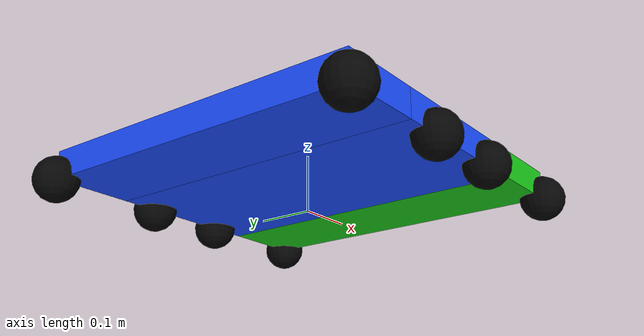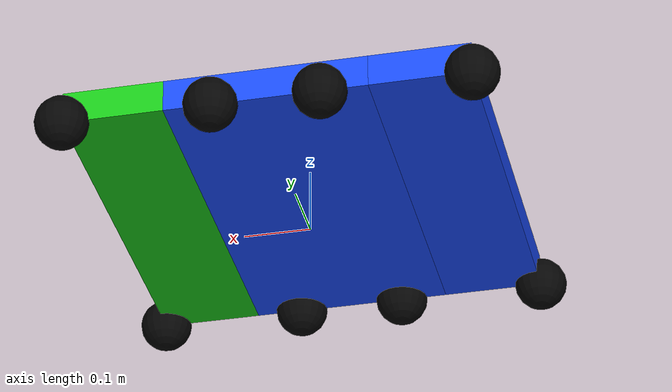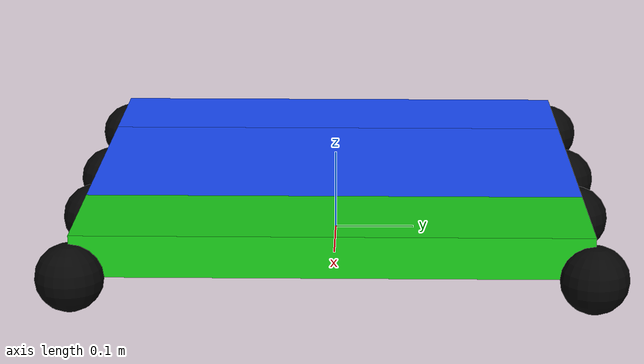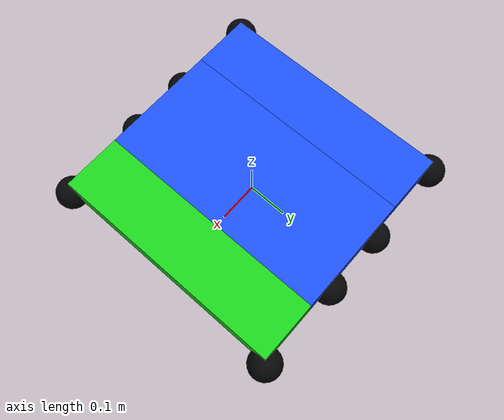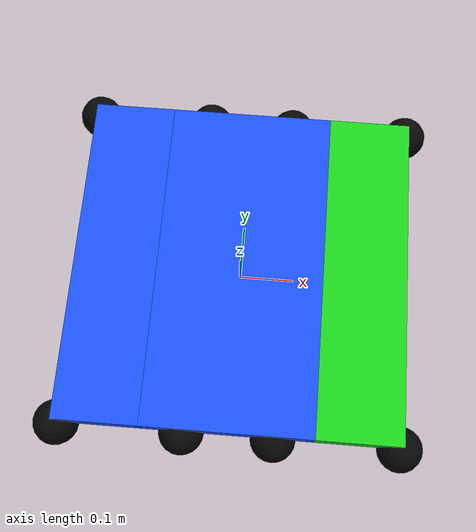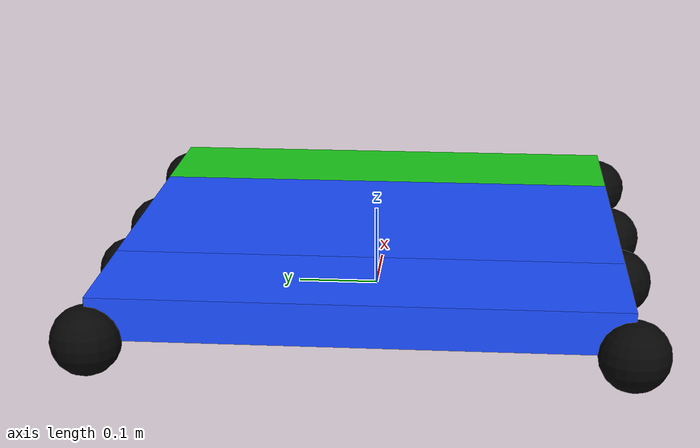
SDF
<?xml version="1.0"?>
<sdf version="1.6">
  <model name="robot_r2">
    <static>false</static>

    <plugin name="robot_r2_planar_move" filename="librobot_r2_planar_move.so">
      <ros>
        <namespace>/</namespace>
      </ros>
      <command_topic>/r2/cmd_vel</command_topic>
      <velocity_feedback_topic>/r2/velocity_feedback</velocity_feedback_topic>
      <cmd_vel_timeout>0.25</cmd_vel_timeout>
      <x_velocity_p_gain>150.0</x_velocity_p_gain>
      <y_velocity_p_gain>150.0</y_velocity_p_gain>
      <x_velocity_i_gain>80.0</x_velocity_i_gain>
      <y_velocity_i_gain>80.0</y_velocity_i_gain>
      <max_integral_force>120.0</max_integral_force>
      <yaw_velocity_p_gain>20.0</yaw_velocity_p_gain>
      <max_x_velocity>10.0</max_x_velocity>
      <max_y_velocity>10.0</max_y_velocity>
      <max_yaw_velocity>15.7</max_yaw_velocity>
    </plugin>

    <plugin name="robot_r2_localizer" filename="librobot_r2_localizer.so">
      <ros>
        <namespace>/</namespace>
      </ros>
      <pose_topic>/r2/pose_feedback</pose_topic>
      <link_name>base_link</link_name>
      <pose_offset>0 0 0 0 0 0</pose_offset>
      <frame_id>world</frame_id>
      <publish_rate>50.0</publish_rate>
    </plugin>

    <plugin name="robot_r2_lift_controller" filename="librobot_r2_lift_controller.so">
      <ros>
        <namespace>/</namespace>
      </ros>
      <command_topic>/r2/lift/cmd_lift</command_topic>
      <position_feedback_topic>/r2/lift/position_feedback</position_feedback_topic>
      <front_joint_name>front_lift_joint</front_joint_name>
      <rear_joint_name>rear_lift_joint</rear_joint_name>
      <min_lift>-0.30</min_lift>
      <max_lift>0.30</max_lift>
      <position_p_gain>2500.0</position_p_gain>
      <position_i_gain>1600.0</position_i_gain>
      <position_d_gain>400.0</position_d_gain>
      <position_i_max>200.0</position_i_max>
      <position_i_min>-200.0</position_i_min>
      <max_actuation_force>300.0</max_actuation_force>
    </plugin>

    <link name="base_link">
      <pose>0 0 0.065 0 0 0</pose>
      <inertial>
        <mass>2.0</mass>
        <inertia>
          <ixx>0.06042</ixx>
          <iyy>0.01542</iyy>
          <izz>0.07500</izz>
          <ixy>0.0</ixy>
          <ixz>0.0</ixz>
          <iyz>0.0</iyz>
        </inertia>
      </inertial>

      <collision name="base_collision">
        <geometry>
          <box>
            <size>0.24 0.48 0.04</size>
          </box>
        </geometry>
        <surface>
          <friction>
            <ode>
              <mu>0.01</mu>
              <mu2>0.01</mu2>
            </ode>
          </friction>
        </surface>
      </collision>

      <visual name="base_visual">
        <geometry>
          <box>
            <size>0.30 0.60 0.05</size>
          </box>
        </geometry>
        <material>
          <ambient>0.1 0.3 1.0 1.0</ambient>
          <diffuse>0.1 0.3 1.0 1.0</diffuse>
        </material>
      </visual>
    </link>

    <link name="front_section_link">
      <pose>0.225 0 0.065 0 0 0</pose>
      <inertial>
        <mass>1.0</mass>
        <inertia>
          <ixx>0.03021</ixx>
          <iyy>0.00208</iyy>
          <izz>0.03188</izz>
          <ixy>0.0</ixy>
          <ixz>0.0</ixz>
          <iyz>0.0</iyz>
        </inertia>
      </inertial>

      <collision name="front_section_collision">
        <geometry>
          <box>
            <size>0.12 0.48 0.04</size>
          </box>
        </geometry>
        <surface>
          <friction>
            <ode>
              <mu>0.01</mu>
              <mu2>0.01</mu2>
            </ode>
          </friction>
        </surface>
      </collision>

      <visual name="front_section_visual">
        <geometry>
          <box>
            <size>0.15 0.60 0.05</size>
          </box>
        </geometry>
        <material>
          <ambient>0.1 0.8 0.1 1.0</ambient>
          <diffuse>0.1 0.8 0.1 1.0</diffuse>
        </material>
      </visual>

      <sensor name="camera" type="camera">
        <pose>0.076 0 0 0 0 0</pose>
        <always_on>true</always_on>
        <update_rate>30.0</update_rate>
        <visualize>false</visualize>
        <camera>
          <horizontal_fov>1.9199</horizontal_fov>
          <image>
            <width>640</width>
            <height>480</height>
            <format>R8G8B8</format>
          </image>
          <clip>
            <near>0.02</near>
            <far>50.0</far>
          </clip>
        </camera>
        <plugin name="front_camera_controller" filename="libgazebo_ros_camera.so">
          <ros>
            <namespace>/r2</namespace>
          </ros>
          <camera_name>front_camera</camera_name>
          <frame_name>front_section_link</frame_name>
        </plugin>
      </sensor>
    </link>

    <link name="rear_section_link">
      <pose>-0.225 0 0.065 0 0 0</pose>
      <inertial>
        <mass>1.0</mass>
        <inertia>
          <ixx>0.03021</ixx>
          <iyy>0.00208</iyy>
          <izz>0.03188</izz>
          <ixy>0.0</ixy>
          <ixz>0.0</ixz>
          <iyz>0.0</iyz>
        </inertia>
      </inertial>

      <collision name="rear_section_collision">
        <geometry>
          <box>
            <size>0.12 0.48 0.04</size>
          </box>
        </geometry>
        <surface>
          <friction>
            <ode>
              <mu>0.01</mu>
              <mu2>0.01</mu2>
            </ode>
          </friction>
        </surface>
      </collision>

      <visual name="rear_section_visual">
        <geometry>
          <box>
            <size>0.15 0.60 0.05</size>
          </box>
        </geometry>
        <material>
          <ambient>0.1 0.3 1.0 1.0</ambient>
          <diffuse>0.1 0.3 1.0 1.0</diffuse>
        </material>
      </visual>
    </link>

    <link name="front_left_mecanum_wheel_link">
      <pose>0.30 0.30 0.04 0 0 0</pose>
      <inertial>
        <mass>0.4</mass>
        <inertia>
          <ixx>0.00026</ixx>
          <iyy>0.00026</iyy>
          <izz>0.00026</izz>
          <ixy>0.0</ixy>
          <ixz>0.0</ixz>
          <iyz>0.0</iyz>
        </inertia>
      </inertial>

      <collision name="front_left_wheel_collision">
        <geometry>
          <sphere>
            <radius>0.04</radius>
          </sphere>
        </geometry>
        <surface>
          <friction>
            <ode>
              <mu>0.3</mu>
              <mu2>0.3</mu2>
            </ode>
          </friction>
        </surface>
      </collision>

      <visual name="front_left_wheel_visual">
        <geometry>
          <sphere>
            <radius>0.04</radius>
          </sphere>
        </geometry>
        <material>
          <ambient>0.02 0.02 0.02 1.0</ambient>
          <diffuse>0.02 0.02 0.02 1.0</diffuse>
        </material>
      </visual>
    </link>

    <link name="front_right_mecanum_wheel_link">
      <pose>0.30 -0.30 0.04 0 0 0</pose>
      <inertial>
        <mass>0.4</mass>
        <inertia>
          <ixx>0.00026</ixx>
          <iyy>0.00026</iyy>
          <izz>0.00026</izz>
          <ixy>0.0</ixy>
          <ixz>0.0</ixz>
          <iyz>0.0</iyz>
        </inertia>
      </inertial>

      <collision name="front_right_wheel_collision">
        <geometry>
          <sphere>
            <radius>0.04</radius>
          </sphere>
        </geometry>
        <surface>
          <friction>
            <ode>
              <mu>0.3</mu>
              <mu2>0.3</mu2>
            </ode>
          </friction>
        </surface>
      </collision>

      <visual name="front_right_wheel_visual">
        <geometry>
          <sphere>
            <radius>0.04</radius>
          </sphere>
        </geometry>
        <material>
          <ambient>0.02 0.02 0.02 1.0</ambient>
          <diffuse>0.02 0.02 0.02 1.0</diffuse>
        </material>
      </visual>
    </link>

    <link name="rear_left_mecanum_wheel_link">
      <pose>-0.30 0.30 0.04 0 0 0</pose>
      <inertial>
        <mass>0.4</mass>
        <inertia>
          <ixx>0.00026</ixx>
          <iyy>0.00026</iyy>
          <izz>0.00026</izz>
          <ixy>0.0</ixy>
          <ixz>0.0</ixz>
          <iyz>0.0</iyz>
        </inertia>
      </inertial>

      <collision name="rear_left_wheel_collision">
        <geometry>
          <sphere>
            <radius>0.04</radius>
          </sphere>
        </geometry>
        <surface>
          <friction>
            <ode>
              <mu>0.3</mu>
              <mu2>0.3</mu2>
            </ode>
          </friction>
        </surface>
      </collision>

      <visual name="rear_left_wheel_visual">
        <geometry>
          <sphere>
            <radius>0.04</radius>
          </sphere>
        </geometry>
        <material>
          <ambient>0.02 0.02 0.02 1.0</ambient>
          <diffuse>0.02 0.02 0.02 1.0</diffuse>
        </material>
      </visual>
    </link>

    <link name="rear_right_mecanum_wheel_link">
      <pose>-0.30 -0.30 0.04 0 0 0</pose>
      <inertial>
        <mass>0.4</mass>
        <inertia>
          <ixx>0.00026</ixx>
          <iyy>0.00026</iyy>
          <izz>0.00026</izz>
          <ixy>0.0</ixy>
          <ixz>0.0</ixz>
          <iyz>0.0</iyz>
        </inertia>
      </inertial>

      <collision name="rear_right_wheel_collision">
        <geometry>
          <sphere>
            <radius>0.04</radius>
          </sphere>
        </geometry>
        <surface>
          <friction>
            <ode>
              <mu>0.3</mu>
              <mu2>0.3</mu2>
            </ode>
          </friction>
        </surface>
      </collision>

      <visual name="rear_right_wheel_visual">
        <geometry>
          <sphere>
            <radius>0.04</radius>
          </sphere>
        </geometry>
        <material>
          <ambient>0.02 0.02 0.02 1.0</ambient>
          <diffuse>0.02 0.02 0.02 1.0</diffuse>
        </material>
      </visual>
    </link>

    <link name="middle_front_left_mecanum_wheel_link">
      <pose>0.08 0.30 0.04 0 0 0</pose>
      <inertial>
        <mass>0.4</mass>
        <inertia>
          <ixx>0.00026</ixx>
          <iyy>0.00026</iyy>
          <izz>0.00026</izz>
          <ixy>0.0</ixy>
          <ixz>0.0</ixz>
          <iyz>0.0</iyz>
        </inertia>
      </inertial>

      <collision name="middle_front_left_wheel_collision">
        <geometry>
          <sphere>
            <radius>0.04</radius>
          </sphere>
        </geometry>
        <surface>
          <friction>
            <ode>
              <mu>0.3</mu>
              <mu2>0.3</mu2>
            </ode>
          </friction>
        </surface>
      </collision>

      <visual name="middle_front_left_wheel_visual">
        <geometry>
          <sphere>
            <radius>0.04</radius>
          </sphere>
        </geometry>
        <material>
          <ambient>0.02 0.02 0.02 1.0</ambient>
          <diffuse>0.02 0.02 0.02 1.0</diffuse>
        </material>
      </visual>
    </link>

    <link name="middle_front_right_mecanum_wheel_link">
      <pose>0.08 -0.30 0.04 0 0 0</pose>
      <inertial>
        <mass>0.4</mass>
        <inertia>
          <ixx>0.00026</ixx>
          <iyy>0.00026</iyy>
          <izz>0.00026</izz>
          <ixy>0.0</ixy>
          <ixz>0.0</ixz>
          <iyz>0.0</iyz>
        </inertia>
      </inertial>

      <collision name="middle_front_right_wheel_collision">
        <geometry>
          <sphere>
            <radius>0.04</radius>
          </sphere>
        </geometry>
        <surface>
          <friction>
            <ode>
              <mu>0.3</mu>
              <mu2>0.3</mu2>
            </ode>
          </friction>
        </surface>
      </collision>

      <visual name="middle_front_right_wheel_visual">
        <geometry>
          <sphere>
            <radius>0.04</radius>
          </sphere>
        </geometry>
        <material>
          <ambient>0.02 0.02 0.02 1.0</ambient>
          <diffuse>0.02 0.02 0.02 1.0</diffuse>
        </material>
      </visual>
    </link>

    <link name="middle_rear_left_mecanum_wheel_link">
      <pose>-0.08 0.30 0.04 0 0 0</pose>
      <inertial>
        <mass>0.4</mass>
        <inertia>
          <ixx>0.00026</ixx>
          <iyy>0.00026</iyy>
          <izz>0.00026</izz>
          <ixy>0.0</ixy>
          <ixz>0.0</ixz>
          <iyz>0.0</iyz>
        </inertia>
      </inertial>

      <collision name="middle_rear_left_wheel_collision">
        <geometry>
          <sphere>
            <radius>0.04</radius>
          </sphere>
        </geometry>
        <surface>
          <friction>
            <ode>
              <mu>0.3</mu>
              <mu2>0.3</mu2>
            </ode>
          </friction>
        </surface>
      </collision>

      <visual name="middle_rear_left_wheel_visual">
        <geometry>
          <sphere>
            <radius>0.04</radius>
          </sphere>
        </geometry>
        <material>
          <ambient>0.02 0.02 0.02 1.0</ambient>
          <diffuse>0.02 0.02 0.02 1.0</diffuse>
        </material>
      </visual>
    </link>

    <link name="middle_rear_right_mecanum_wheel_link">
      <pose>-0.08 -0.30 0.04 0 0 0</pose>
      <inertial>
        <mass>0.4</mass>
        <inertia>
          <ixx>0.00026</ixx>
          <iyy>0.00026</iyy>
          <izz>0.00026</izz>
          <ixy>0.0</ixy>
          <ixz>0.0</ixz>
          <iyz>0.0</iyz>
        </inertia>
      </inertial>

      <collision name="middle_rear_right_wheel_collision">
        <geometry>
          <sphere>
            <radius>0.04</radius>
          </sphere>
        </geometry>
        <surface>
          <friction>
            <ode>
              <mu>0.3</mu>
              <mu2>0.3</mu2>
            </ode>
          </friction>
        </surface>
      </collision>

      <visual name="middle_rear_right_wheel_visual">
        <geometry>
          <sphere>
            <radius>0.04</radius>
          </sphere>
        </geometry>
        <material>
          <ambient>0.02 0.02 0.02 1.0</ambient>
          <diffuse>0.02 0.02 0.02 1.0</diffuse>
        </material>
      </visual>
    </link>

    <joint name="front_left_mecanum_wheel_joint" type="fixed">
      <parent>front_section_link</parent>
      <child>front_left_mecanum_wheel_link</child>
    </joint>

    <joint name="front_right_mecanum_wheel_joint" type="fixed">
      <parent>front_section_link</parent>
      <child>front_right_mecanum_wheel_link</child>
    </joint>

    <joint name="rear_left_mecanum_wheel_joint" type="fixed">
      <parent>rear_section_link</parent>
      <child>rear_left_mecanum_wheel_link</child>
    </joint>

    <joint name="rear_right_mecanum_wheel_joint" type="fixed">
      <parent>rear_section_link</parent>
      <child>rear_right_mecanum_wheel_link</child>
    </joint>

    <joint name="middle_front_left_mecanum_wheel_joint" type="fixed">
      <parent>base_link</parent>
      <child>middle_front_left_mecanum_wheel_link</child>
    </joint>

    <joint name="middle_front_right_mecanum_wheel_joint" type="fixed">
      <parent>base_link</parent>
      <child>middle_front_right_mecanum_wheel_link</child>
    </joint>

    <joint name="middle_rear_left_mecanum_wheel_joint" type="fixed">
      <parent>base_link</parent>
      <child>middle_rear_left_mecanum_wheel_link</child>
    </joint>

    <joint name="middle_rear_right_mecanum_wheel_joint" type="fixed">
      <parent>base_link</parent>
      <child>middle_rear_right_mecanum_wheel_link</child>
    </joint>

    <joint name="front_lift_joint" type="prismatic">
      <parent>base_link</parent>
      <child>front_section_link</child>
      <axis>
        <xyz>0 0 1</xyz>
        <limit>
          <lower>-0.30</lower>
          <upper>0.30</upper>
        </limit>
        <dynamics>
          <damping>20.0</damping>
          <friction>5.0</friction>
        </dynamics>
      </axis>
    </joint>

    <joint name="rear_lift_joint" type="prismatic">
      <parent>base_link</parent>
      <child>rear_section_link</child>
      <axis>
        <xyz>0 0 1</xyz>
        <limit>
          <lower>-0.30</lower>
          <upper>0.30</upper>
        </limit>
        <dynamics>
          <damping>20.0</damping>
          <friction>5.0</friction>
        </dynamics>
      </axis>
    </joint>
  </model>
</sdf>
